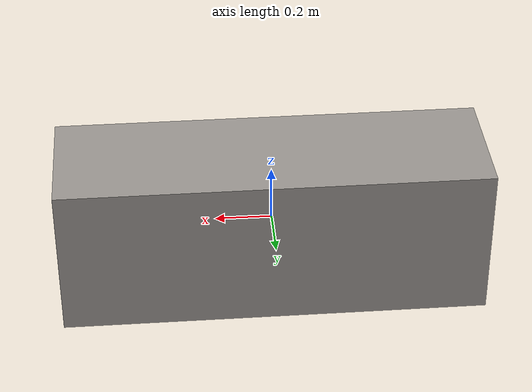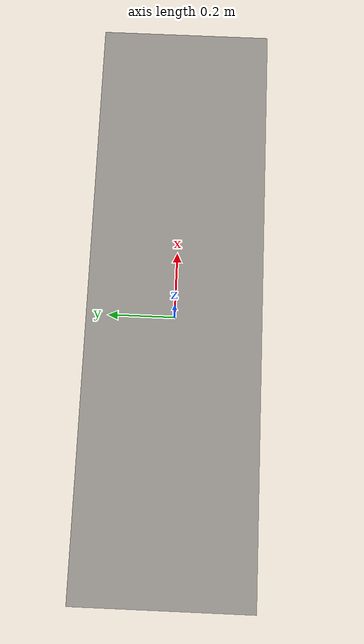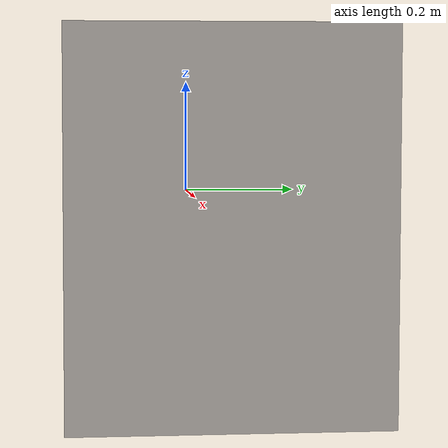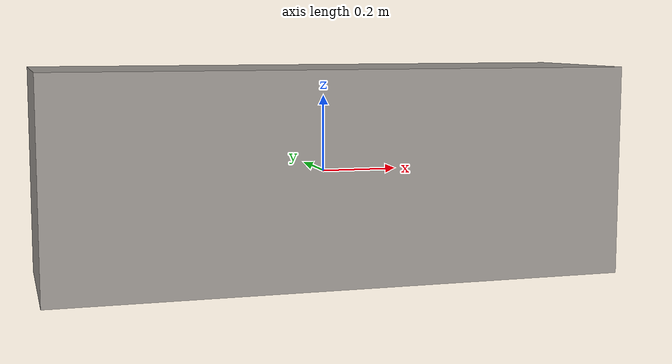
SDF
<?xml version="1.0"?>
<sdf version="1.6">
  <model name="tv_stand">
    <static>true</static>
    <link name="link">
      <collision name="col">
        <geometry>
          <box>
            <size>1.5 0.45 0.55</size>
          </box>
        </geometry>
      </collision>
      <visual name="vis">
        <geometry>
          <box>
            <size>1.5 0.45 0.55</size>
          </box>
        </geometry>
        <material>
          <ambient>0.62 0.6 0.58 1</ambient>
          <diffuse>0.62 0.6 0.58 1</diffuse>
        </material>
      </visual>
    </link>
  </model>
</sdf>
